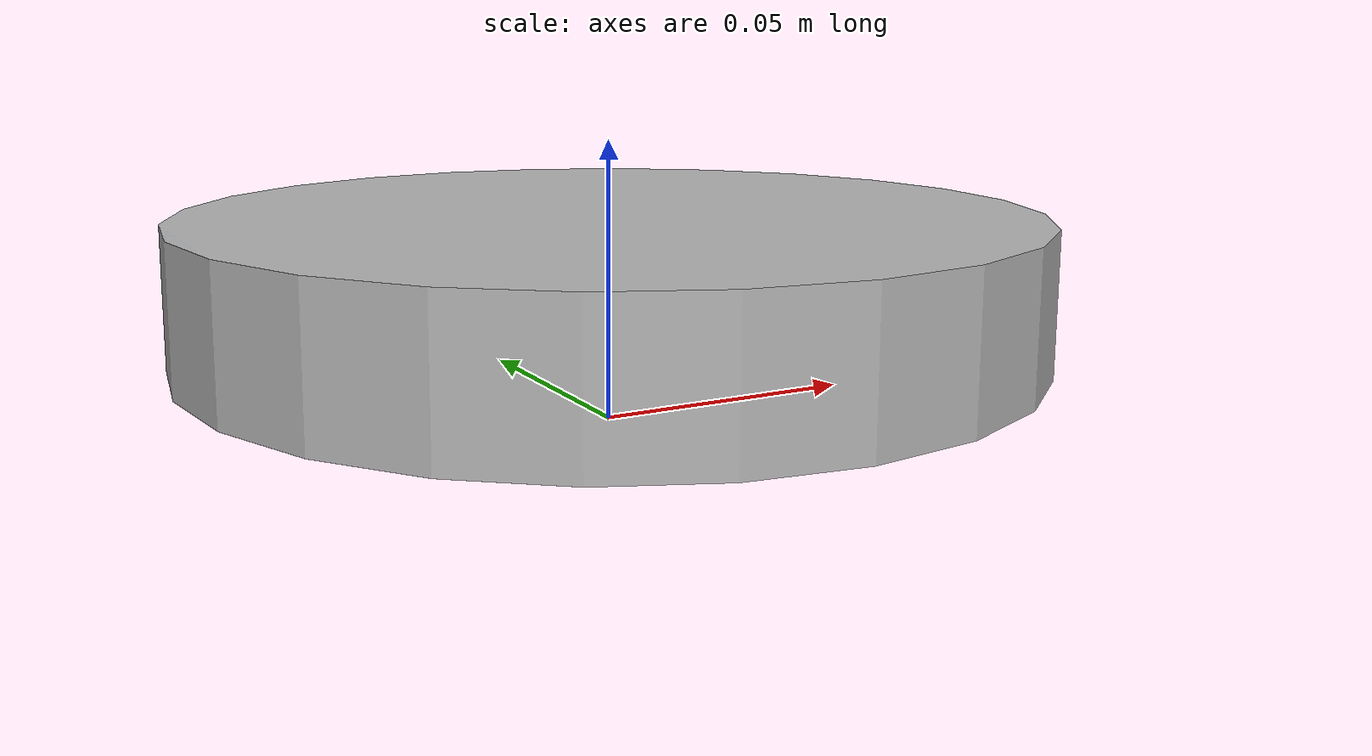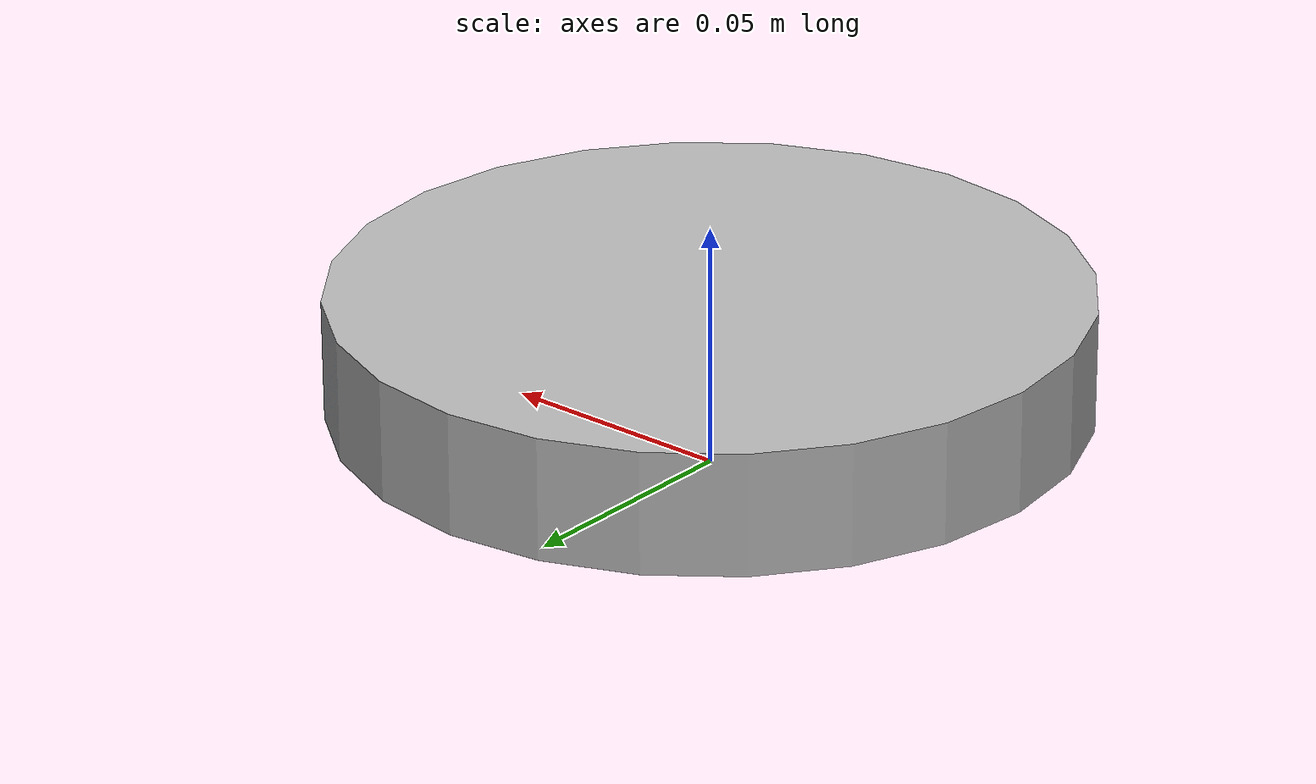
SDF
<?xml version="1.0" ?>
<sdf version="1.6">
  <model name="atom1">
    <link name="link">
      <pose>0 0 0.0125 0 0 0</pose>
      <inertial>
        <pose>0 0 0.0125 0 0 0</pose>
        <mass>0.06</mass>
        <inertia>
          <ixx>0.0005</ixx>
          <ixy>0</ixy>
          <ixz>0</ixz>
          <iyy>0.0005</iyy>
          <iyz>0</iyz>
          <izz>0.0001</izz>
        </inertia>
      </inertial>
      <collision name="collision">
        <geometry>
          <mesh>
            <uri>model://atom1/meshes/atom1.dae</uri>
          </mesh>
        </geometry>
      </collision>
      <visual name="visual">
        <geometry>
          <mesh>
            <uri>model://atom1/meshes/atom1.dae</uri>
          </mesh>
        </geometry>
      </visual>
    </link>
  </model>
</sdf>
